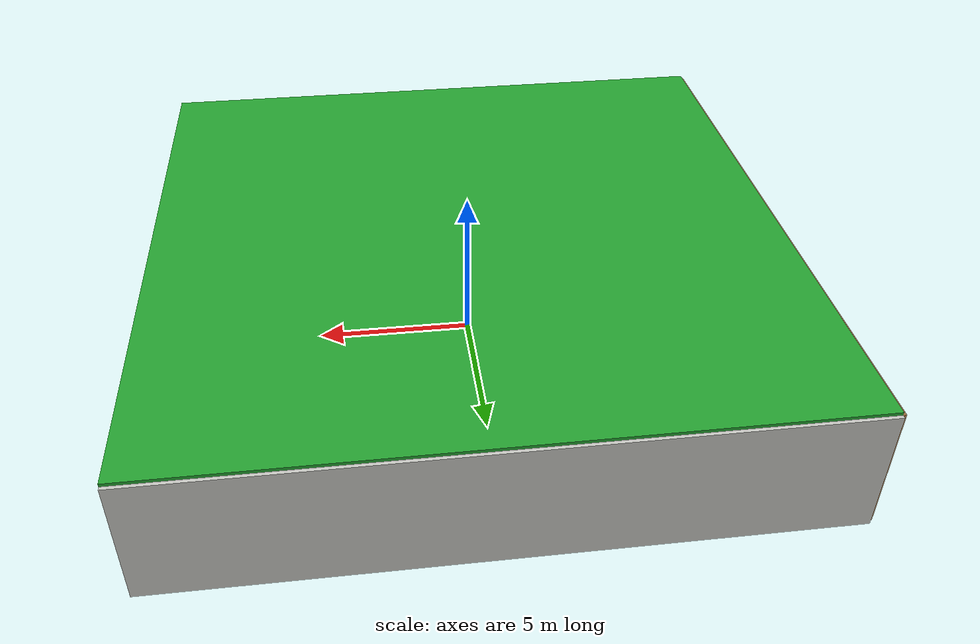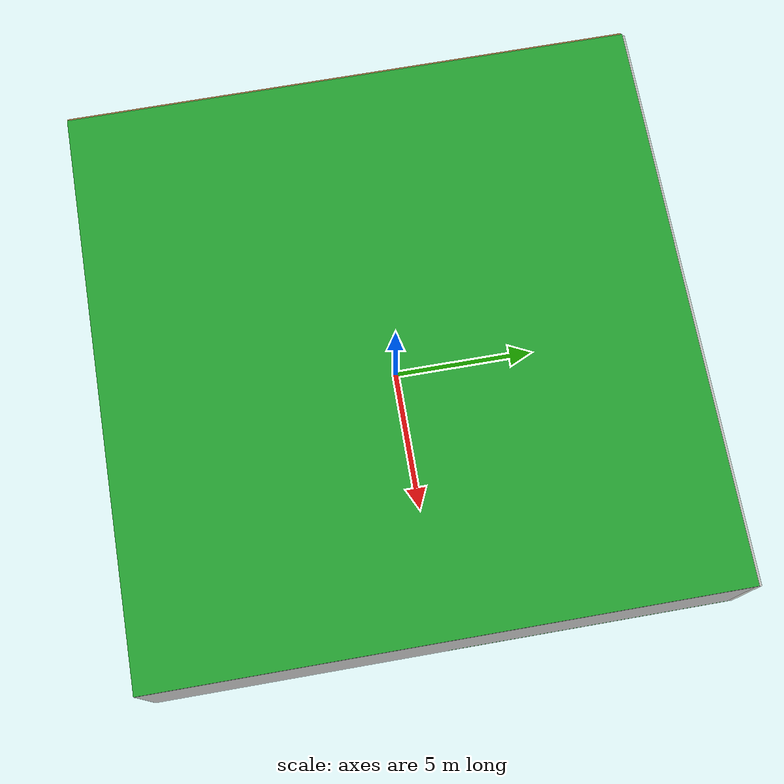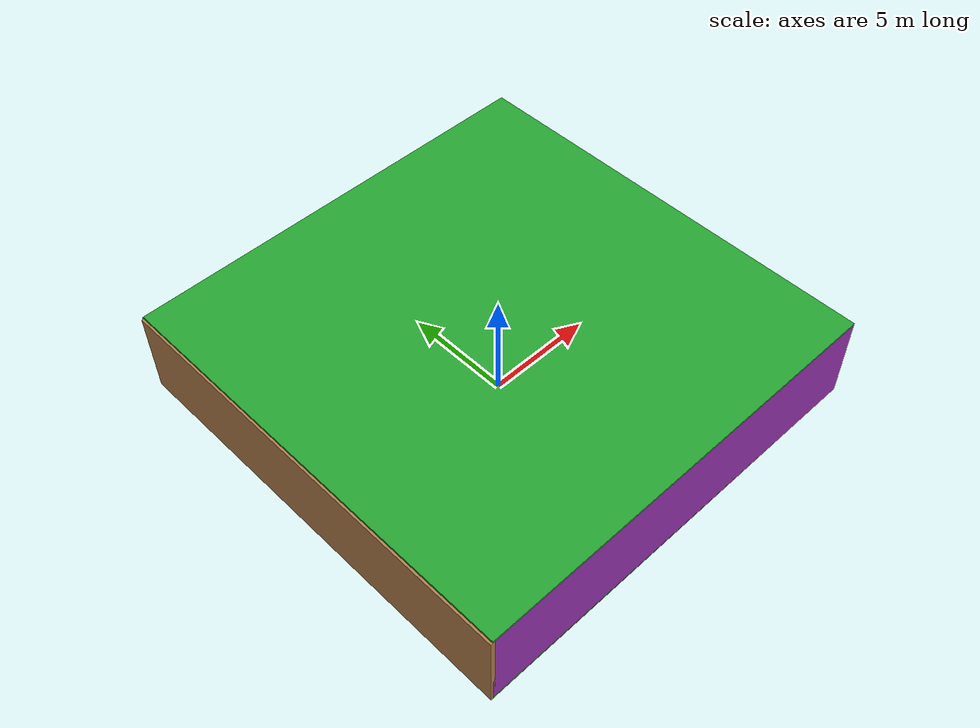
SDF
<sdf version="1.4">
 <world name="default">
  <physics type="ode">
   <max_step_size>0.001</max_step_size>
   <real_time_factor>1</real_time_factor>
   <real_time_update_rate>1000</real_time_update_rate>
   <gravity>0 0 -9.8</gravity>
  </physics>
  <scene><ambient>0.4 0.4 0.4 1</ambient><background>0.7 0.7 0.7 1</background><shadows>1</shadows></scene>
  <model name="Surrounding">
   <static>1</static>
   <link name="Ceiling">
    <collision name="Ceiling_Collision"><geometry><box><size>20 20 0.1</size></box></geometry></collision>
    <visual name="Ceiling_Visual">
     <geometry><box><size>20 20 0.1</size></box></geometry>
     <material>
      <script><uri>file://media/materials/scripts/gazebo.material</uri><name>Gazebo/Green</name></script>
     </material>
    </visual>
    <pose>0 0 4.05 0 0 0</pose>
   </link>
   <link name="Wall_South">
    <collision name="Wall_South_Collision">
     <geometry><box><size>20 0 4</size></box></geometry>
     <pose>0 0 2 0 -0 0</pose>
    </collision>
    <visual name="Wall_South_Visual">
     <pose>0 0 2 0 -0 0</pose>
     <geometry><box><size>20 0 4</size></box></geometry>
     <material>
      <script><uri>file://media/materials/scripts/gazebo.material</uri><name>Gazebo/PurpleGlow</name></script>
     </material>
    </visual>
    <velocity_decay><linear>0</linear><angular>0</angular></velocity_decay>
    <pose>0 -10 0 0 -0 0</pose>
   </link>
   <link name="Wall_East">
    <collision name="Wall_21_Collision">
     <geometry><box><size>20 0 4</size></box></geometry>
     <pose>0 0 2 0 -0 0</pose>
    </collision>
    <visual name="Wall_21_Visual">
     <pose>0 0 2 0 -0 0</pose>
     <geometry><box><size>20 0 4</size></box></geometry>
     <material>
      <script><uri>file://media/materials/scripts/gazebo.material</uri><name>Gazebo/CloudySky</name></script>
     </material>
    </visual>
    <velocity_decay><linear>0</linear><angular>0</angular></velocity_decay>
    <pose>10 0 0 0 -0 1.5708</pose>
   </link>
   <link name="Wall_North">
    <collision name="Wall_22_Collision">
     <geometry><box><size>20 0.2 4</size></box></geometry>
     <pose>0 0 2 0 -0 0</pose>
    </collision>
    <visual name="Wall_22_Visual">
     <pose>0 0 2 0 -0 0</pose>
     <geometry><box><size>20 0.2 4</size></box></geometry>
     <material>
      <script><uri>file://media/materials/scripts/gazebo.material</uri><name>Gazebo/CeilingTiled</name></script>
     </material>
    </visual>
    <velocity_decay><linear>0</linear><angular>0</angular></velocity_decay>
    <pose>0 10 0 0 -0 0</pose>
   </link>
   <link name="Wall_West">
    <collision name="Wall_23_Collision">
     <geometry><box><size>20 0.2 4</size></box></geometry>
     <pose>0 0 2 0 -0 0</pose>
    </collision>
    <visual name="Wall_23_Visual">
     <pose>0 0 2 0 -0 0</pose>
     <geometry><box><size>20 0.2 4</size></box></geometry>
     <material>
      <script><uri>file://media/materials/scripts/gazebo.material</uri><name>Gazebo/Wood</name></script>
     </material>
    </visual>
    <velocity_decay><linear>0</linear><angular>0</angular></velocity_decay>
    <pose>-10 0 0 0 0 -1.5708</pose>
   </link>
   <link name="Ground_link">
    <collision name="collision">
     <pose>0 0 .05 0 -0 0</pose>
     <geometry><box><size>20 20 0.1</size></box></geometry>
    </collision>
    <visual name="visual">
     <pose>0 0 .05 0 -0 0</pose>
     <geometry><box><size>20 20 0.1</size></box></geometry>
     <material>
      <script><uri>file://media/materials/scripts/gazebo.material</uri><name>Gazebo/GreenGlow</name></script>
     </material>
    </visual>
   </link>
   <static>1</static>
  </model>
  <spherical_coordinates>
   <surface_model>EARTH_WGS84</surface_model>
   <latitude_deg>0</latitude_deg>
   <longitude_deg>0</longitude_deg>
   <elevation>0</elevation>
   <heading_deg>0</heading_deg>
  </spherical_coordinates>
  <light name="lightball_0" type="diffuse">
   <diffuse>0.8 0.8 0.8 1</diffuse>
   <specular>0.2 0.2 0.2 1</specular>
   <attenuation>
    <range>100</range>
    <constant>0.7</constant>
    <linear>0.01</linear>
    <quadratic>0.001</quadratic>
   </attenuation>
   <direction>-0.5 0.1 -0.9</direction>
   <pose>5.48514769792 3.42408884946 1.66900466204 0 0 0</pose>
  </light>
  <light name="lightball_1" type="diffuse">
   <diffuse>0.8 0.8 0.8 1</diffuse>
   <specular>0.2 0.2 0.2 1</specular>
   <attenuation>
    <range>100</range>
    <constant>0.7</constant>
    <linear>0.01</linear>
    <quadratic>0.001</quadratic>
   </attenuation>
   <direction>-0.5 0.1 -0.9</direction>
   <pose>-7.54081524665 -8.22927386309 3.61451808059 0 0 0</pose>
  </light>
  <light name="lightball_2" type="diffuse">
   <diffuse>0.8 0.8 0.8 1</diffuse>
   <specular>0.2 0.2 0.2 1</specular>
   <attenuation>
    <range>100</range>
    <constant>0.7</constant>
    <linear>0.01</linear>
    <quadratic>0.001</quadratic>
   </attenuation>
   <direction>-0.5 0.1 -0.9</direction>
   <pose>6.55047089835 6.8433411391 1.54917787691 0 0 0</pose>
  </light>
  <light name="lightball_3" type="diffuse">
   <diffuse>0.8 0.8 0.8 1</diffuse>
   <specular>0.2 0.2 0.2 1</specular>
   <attenuation>
    <range>100</range>
    <constant>0.7</constant>
    <linear>0.01</linear>
    <quadratic>0.001</quadratic>
   </attenuation>
   <direction>-0.5 0.1 -0.9</direction>
   <pose>3.97807478858 4.39030569772 1.67766657124 0 0 0</pose>
  </light>
  <include>
   <uri>model://textured_shapes</uri>
   <pose>-4.81652285701 2.27015012834 0 0 0 2.37376727656</pose>
  </include>
  <include><uri>model://cabinet</uri><pose>-3.80329129557 7.92857951158 0 0 0 1.97293382284</pose></include>
  <include><uri>model://cabinet</uri><pose>-1.46251705521 1.3768034845 0 0 0 1.62635910855</pose></include>
  <include>
   <uri>model://robocup_3Dsim_goal</uri>
   <pose>-1.29325507105 8.10235134897 0 0 0 1.15053506153</pose>
  </include>
  <include><uri>model://table</uri><pose>1.27959249279 4.65896044487 0 0 0 1.45889981744</pose></include>
  <include>
   <uri>model://robocup_3Dsim_goal</uri>
   <pose>4.61891256562 -7.92823952292 0 0 0 1.91967226844</pose>
  </include>
  <include><uri>model://cabinet</uri><pose>4.84221954177 -4.44369196212 0 0 0 2.41936161741</pose></include>
  <include>
   <uri>model://robocup_3Dsim_goal</uri>
   <pose>4.66667066197 -2.14330199793 0 0 0 1.01295531042</pose>
  </include>
  <include>
   <uri>model://textured_shapes</uri>
   <pose>4.0410996346 1.95204554471 0 0 0 0.204568093812</pose>
  </include>
  <include><uri>model://cabinet</uri><pose>4.33636198398 6.9904616054 0 0 0 2.17555821557</pose></include>
  <include><uri>model://table</uri><pose>7.2363512804 -6.83627491038 0 0 0 1.27750532597</pose></include>
 </world>
</sdf>

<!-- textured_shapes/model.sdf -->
<sdf version="1.6">
  <model name="textured_shapes">
    <pose>0 0 0.5 0 0 0</pose>
    <link name="box">
      <pose>0 -1.5 0 0 0 0</pose>
      <collision name="collision">
        <geometry>
          <box>
            <size>1 1 1</size>
          </box>
        </geometry>
      </collision>
      <visual name="visual">
        <geometry>
          <box>
            <size>1 1 1</size>
          </box>
        </geometry>
        <material>
          <script>
            <uri>model://../model_source/models/textured_shapes/materials/scripts</uri>
            <uri>model://../model_source/models/textured_shapes/materials/textures</uri>
            <name>TexturedShape/Squares</name>
          </script>
        </material>
      </visual>
    </link>
    <link name="sphere">
      <collision name="collision">
        <geometry>
          <sphere>
            <radius>0.5</radius>
          </sphere>
        </geometry>
      </collision>
      <visual name="visual">
        <geometry>
          <sphere>
            <radius>0.5</radius>
          </sphere>
        </geometry>
        <material>
          <script>
            <uri>model://../model_source/models/textured_shapes/materials/scripts</uri>
            <uri>model://../model_source/models/textured_shapes/materials/textures</uri>
            <name>TexturedShape/Squares</name>
          </script>
        </material>
      </visual>
    </link>
    <link name="cylinder">
      <pose>0 1.5 0 0 0 0</pose>
      <collision name="collision">
        <geometry>
          <cylinder>
            <radius>0.5</radius>
            <length>1</length>
          </cylinder>
        </geometry>
      </collision>
      <visual name="visual">
        <geometry>
          <cylinder>
            <radius>0.5</radius>
            <length>1</length>
          </cylinder>
        </geometry>
        <material>
          <script>
            <uri>model://../model_source/models/textured_shapes/materials/scripts</uri>
            <uri>model://../model_source/models/textured_shapes/materials/textures</uri>
            <name>TexturedShape/Squares</name>
          </script>
        </material>
      </visual>
    </link>
  </model>
</sdf>

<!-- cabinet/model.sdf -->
<sdf version="1.5">
  <model name="cabinet">
    <static>true</static>
    <link name="cabinet_bottom_plate">
      <inertial>
        <pose>0 0 -1 0 0 0</pose>
        <inertia>
          <ixx>2.050000</ixx>
          <ixy>0</ixy>
          <ixz>0</ixz>
          <iyy>2.050000</iyy>
          <iyz>0</iyz>
          <izz>2.050000</izz>
        </inertia>
        <mass>25.000000</mass>
      </inertial>
      <collision name="cabinet_bottom_plate_geom">
        <pose>0 0 0.010000 0 0 0</pose>
        <geometry>
          <box>
            <size>0.450000 0.450000 0.020000</size>
          </box>
        </geometry>
      </collision>
      <visual name="cabinet_bottom_plate_geom_visual">
        <pose>0 0 0.010000 0 0 0</pose>
        <geometry>
          <box>
            <size>0.450000 0.450000 0.020000</size>
          </box>
        </geometry>
        <material>
          <script>
            <uri>model://media/materials/scripts/gazebo.material</uri>
            <name>Gazebo/Wood</name>
          </script>
        </material>
      </visual>
      <collision name="cabinet_bottom_plate_geom_cabinet_back_plate">
        <pose>0.235000 0 0.510000 0 0 0</pose>
        <geometry>
          <box>
            <size>0.020000 0.450000 1.020000</size>
          </box>
        </geometry>
      </collision>
      <visual name="cabinet_bottom_plate_geom_cabinet_back_plate_visual">
        <pose>0.235000 0 0.510000 0 0 0</pose>
        <geometry>
          <box>
            <size>0.020000 0.450000 1.020000</size>
          </box>
        </geometry>
        <material>
          <script>
            <uri>model://media/materials/scripts/gazebo.material</uri>
            <name>Gazebo/Wood</name>
          </script>
        </material>
      </visual>
      <collision name="cabinet_bottom_plate_geom_cabinet_left_plate">
        <pose>0 0.235000 0.510000 0 0 0</pose>
        <geometry>
          <box>
            <size>0.450000 0.020000 1.020000</size>
          </box>
        </geometry>
      </collision>
      <visual name="cabinet_bottom_plate_geom_cabinet_left_plate_visual">
        <pose>0 0.235000 0.510000 0 0 0</pose>
        <geometry>
          <box>
            <size>0.450000 0.020000 1.020000</size>
          </box>
        </geometry>
        <material>
          <script>
            <uri>model://media/materials/scripts/gazebo.material</uri>
            <name>Gazebo/Wood</name>
          </script>
        </material>
      </visual>
      <collision name="cabinet_bottom_plate_geom_cabinet_middle_plate">
        <pose>0 0 0.510000 0 0 0</pose>
        <geometry>
          <box>
            <size>0.450000 0.450000 0.020000</size>
          </box>
        </geometry>
      </collision>
      <visual name="cabinet_bottom_plate_geom_cabinet_middle_plate_visual">
        <pose>0 0 0.510000 0 0 0</pose>
        <geometry>
          <box>
            <size>0.450000 0.450000 0.020000</size>
          </box>
        </geometry>
        <material>
          <script>
            <uri>model://media/materials/scripts/gazebo.material</uri>
            <name>Gazebo/Wood</name>
          </script>
        </material>
      </visual>
      <collision name="cabinet_bottom_plate_geom_cabinet_right_plate">
        <pose>0 -0.235000 0.510000 0 0 0</pose>
        <geometry>
          <box>
            <size>0.450000 0.020000 1.020000</size>
          </box>
        </geometry>
      </collision>
      <visual name="cabinet_bottom_plate_geom_cabinet_right_plate_visual">
        <pose>0 -0.235000 0.510000 0 0 0</pose>
        <geometry>
          <box>
            <size>0.450000 0.020000 1.020000</size>
          </box>
        </geometry>
        <material>
          <script>
            <uri>model://media/materials/scripts/gazebo.material</uri>
            <name>Gazebo/Wood</name>
          </script>
        </material>
      </visual>
      <collision name="cabinet_bottom_plate_geom_cabinet_top_plate">
        <pose>0 0 1.010000 0 0 0</pose>
        <geometry>
          <box>
            <size>0.450000 0.450000 0.020000</size>
          </box>
        </geometry>
      </collision>
      <visual name="cabinet_bottom_plate_geom_cabinet_top_plate_visual">
        <pose>0 0 1.010000 0 0 0</pose>
        <geometry>
          <box>
            <size>0.450000 0.450000 0.020000</size>
          </box>
        </geometry>
        <material>
          <script>
            <uri>model://media/materials/scripts/gazebo.material</uri>
            <name>Gazebo/Wood</name>
          </script>
        </material>
      </visual>
    </link>
  </model>
</sdf>

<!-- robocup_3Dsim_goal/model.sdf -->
<sdf version="1.5">
  <model name="robocup_3d_goal">
    <static>true</static>
    <link name="left_post">
      <pose>0 1.05 0.45 0 0 0</pose>
      <collision name="collision">
        <geometry>
          <cylinder>
            <radius>0.05</radius>
            <length>0.9</length>
          </cylinder>
        </geometry>
      </collision>
      <visual name="visual">
        <geometry>
          <cylinder>
            <radius>0.05</radius>
            <length>0.9</length>
          </cylinder>
        </geometry>
        <material>
          <script>
            <uri>file://media/materials/scripts/gazebo.material</uri>
            <name>Gazebo/ZincYellow</name>
          </script>
        </material>
      </visual>
    </link>
    <link name="left_support_horiz_lower">
      <pose>0.30 1.05 0.01 0 0 0</pose>
      <collision name="collision">
        <geometry>
          <box>
            <size>0.50 0.02 0.02</size>
          </box>
        </geometry>
      </collision>
      <visual name="visual">
        <geometry>
          <box>
            <size>0.50 0.02 0.02</size>
          </box>
        </geometry>
        <material>
          <script>
            <uri>file://media/materials/scripts/gazebo.material</uri>
            <name>Gazebo/White</name>
          </script>
        </material>
      </visual>
    </link>
    <link name="left_support_horiz_upper">
      <pose>0.30 1.05 0.79 0 0 0</pose>
      <collision name="collision">
        <geometry>
          <box>
            <size>0.50 0.02 0.02</size>
          </box>
        </geometry>
      </collision>
      <visual name="visual">
        <geometry>
          <box>
            <size>0.50 0.02 0.02</size>
          </box>
        </geometry>
        <material>
          <script>
            <uri>file://media/materials/scripts/gazebo.material</uri>
            <name>Gazebo/White</name>
          </script>
        </material>
      </visual>
    </link>
    <link name="left_support_vertical">
      <pose>0.56 1.05 0.4 0 1.5708 0</pose>
      <collision name="collision">
        <geometry>
          <box>
            <size>0.80 0.02 0.02</size>
          </box>
        </geometry>
      </collision>
      <visual name="visual">
        <geometry>
          <box>
            <size>0.80 0.02 0.02</size>
          </box>
        </geometry>
        <material>
          <script>
            <uri>file://media/materials/scripts/gazebo.material</uri>
            <name>Gazebo/White</name>
          </script>
        </material>
      </visual>
    </link>
    <link name="right_support_horiz_lower">
      <pose>0.30 -1.05 0.01 0 0 0</pose>
      <collision name="collision">
        <geometry>
          <box>
            <size>0.50 0.02 0.02</size>
          </box>
        </geometry>
      </collision>
      <visual name="visual">
        <geometry>
          <box>
            <size>0.50 0.02 0.02</size>
          </box>
        </geometry>
        <material>
          <script>
            <uri>file://media/materials/scripts/gazebo.material</uri>
            <name>Gazebo/White</name>
          </script>
        </material>
      </visual>
    </link>
    <link name="right_support_horiz_upper">
      <pose>0.30 -1.05 0.79 0 0 0</pose>
      <collision name="collision">
        <geometry>
          <box>
            <size>0.50 0.02 0.02</size>
          </box>
        </geometry>
      </collision>
      <visual name="visual">
        <geometry>
          <box>
            <size>0.50 0.02 0.02</size>
          </box>
        </geometry>
        <material>
          <script>
            <uri>file://media/materials/scripts/gazebo.material</uri>
            <name>Gazebo/White</name>
          </script>
        </material>
      </visual>
    </link>
    <link name="right_support_vertical">
      <pose>0.56 -1.05 0.4 0 1.5708 0</pose>
      <collision name="collision">
        <geometry>
          <box>
            <size>0.80 0.02 0.02</size>
          </box>
        </geometry>
      </collision>
      <visual name="visual">
        <geometry>
          <box>
            <size>0.80 0.02 0.02</size>
          </box>
        </geometry>
        <material>
          <script>
            <uri>file://media/materials/scripts/gazebo.material</uri>
            <name>Gazebo/White</name>
          </script>
        </material>
      </visual>
    </link>
    <link name="center_support_horiz_lower">
      <pose>0.56 0 0.01 0 1.5708 0</pose>
      <collision name="collision">
        <geometry>
          <box>
            <size>0.02 2.08 0.02</size>
          </box>
        </geometry>
      </collision>
      <visual name="visual">
        <geometry>
          <box>
            <size>0.02 2.08 0.02</size>
          </box>
        </geometry>
        <material>
          <script>
            <uri>file://media/materials/scripts/gazebo.material</uri>
            <name>Gazebo/White</name>
          </script>
        </material>
      </visual>
    </link>
    <link name="center_support_horiz_upper">
      <pose>0.56 0 0.79 0 1.5708 0</pose>
      <collision name="collision">
        <geometry>
          <box>
            <size>0.02 2.08 0.02</size>
          </box>
        </geometry>
      </collision>
      <visual name="visual">
        <geometry>
          <box>
            <size>0.02 2.08 0.02</size>
          </box>
        </geometry>
        <material>
          <script>
            <uri>file://media/materials/scripts/gazebo.material</uri>
            <name>Gazebo/White</name>
          </script>
        </material>
      </visual>
    </link>
    <link name="right_post">
      <pose>0 -1.05 0.45 0 0 0</pose>
      <collision name="collision">
        <geometry>
          <cylinder>
            <radius>0.05</radius>
            <length>0.9</length>
          </cylinder>
        </geometry>
      </collision>
      <visual name="visual">
        <geometry>
          <cylinder>
            <radius>0.05</radius>
            <length>0.9</length>
          </cylinder>
        </geometry>
        <material>
          <script>
            <uri>file://media/materials/scripts/gazebo.material</uri>
            <name>Gazebo/ZincYellow</name>
          </script>
        </material>
      </visual>
    </link>
    <link name="crossbar">
      <pose>0 0 0.85 1.57 1.57 0</pose>
      <collision name="collision">
        <geometry>
          <cylinder>
            <radius>0.05</radius>
            <length>2.0</length>
          </cylinder>
        </geometry>
      </collision>
      <visual name="visual">
        <geometry>
          <cylinder>
            <radius>0.05</radius>
            <length>2.0</length>
          </cylinder>
        </geometry>
        <material>
          <script>
            <uri>file://media/materials/scripts/gazebo.material</uri>
            <name>Gazebo/ZincYellow</name>
          </script>
        </material>
      </visual>
    </link>
    <link name="center_net">
      <pose>0.56 0 0.40 0 0 0</pose>
      <collision name="collision">
        <geometry>
          <box>
            <size>0.01 2.1 0.80</size>
          </box>
        </geometry>
      </collision>
      <visual name="visual">
        <geometry>
          <box>
            <size>0.01 2.1 0.80</size>
          </box>
        </geometry>
        <material>
          <script>
            <uri>model://../model_source/models/robocup09_spl_field/materials/scripts/</uri>
            <uri>model://../model_source/models/robocup09_spl_field/materials/textures/</uri>
            <name>RoboCup/Net</name>
          </script>
        </material>
      </visual>
    </link>
    <link name="left_net">
      <pose>0.30 1.05 0.40 0 0 0</pose>
      <collision name="collision">
        <geometry>
          <box>
            <size>0.50 0.01 0.76</size>
          </box>
        </geometry>
      </collision>
      <visual name="visual">
        <geometry>
          <box>
            <size>0.50 0.01 0.76</size>
          </box>
        </geometry>
        <material>
          <script>
            <uri>model://../model_source/models/robocup09_spl_field/materials/scripts/</uri>
            <uri>model://../model_source/models/robocup09_spl_field/materials/textures/</uri>
            <name>RoboCup/Net</name>
          </script>
        </material>
      </visual>
    </link>
    <link name="right_net">
      <pose>0.30 -1.05 0.40 0 0 0</pose>
      <collision name="collision">
        <geometry>
          <box>
            <size>0.50 0.01 0.76</size>
          </box>
        </geometry>
      </collision>
      <visual name="visual">
        <geometry>
          <box>
            <size>0.50 0.01 0.76</size>
          </box>
        </geometry>
        <material>
          <script>
            <uri>model://../model_source/models/robocup09_spl_field/materials/scripts/</uri>
            <uri>model://../model_source/models/robocup09_spl_field/materials/textures/</uri>
            <name>RoboCup/Net</name>
          </script>
        </material>
      </visual>
    </link>
  </model>
</sdf>

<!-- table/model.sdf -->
<sdf version="1.5">
  <model name="table">
    <static>true</static>
    <link name="link">
      <collision name="surface">
        <pose>0 0 1.0 0 0 0</pose>
        <geometry>
          <box>
            <size>1.5 0.8 0.03</size>
          </box>
        </geometry>
        <surface>
          <friction>
            <ode>
              <mu>0.6</mu>
              <mu2>0.6</mu2>
            </ode>
          </friction>
        </surface>
      </collision>
      <visual name="visual1">
        <pose>0 0 1.0 0 0 0</pose>
        <geometry>
          <box>
            <size>1.5 0.8 0.03</size>
          </box>
        </geometry>
        <material>
          <script>
            <uri>model://media/materials/scripts/gazebo.material</uri>
            <name>Gazebo/Wood</name>
          </script>
        </material>
      </visual>
      <collision name="front_left_leg">
        <pose>0.68 0.38 0.5 0 0 0</pose>
        <geometry>
          <cylinder>
            <radius>0.02</radius>
            <length>1.0</length>
          </cylinder>
        </geometry>
      </collision>
      <visual name="front_left_leg">
        <pose>0.68 0.38 0.5 0 0 0</pose>
        <geometry>
          <cylinder>
            <radius>0.02</radius>
            <length>1.0</length>
          </cylinder>
        </geometry>
        <material>
          <script>
            <uri>model://media/materials/scripts/gazebo.material</uri>
            <name>Gazebo/Grey</name>
          </script>
        </material>
      </visual>
      <collision name="front_right_leg">
        <pose>0.68 -0.38 0.5 0 0 0</pose>
        <geometry>
          <cylinder>
            <radius>0.02</radius>
            <length>1.0</length>
          </cylinder>
        </geometry>
      </collision>
      <visual name="front_right_leg">
        <pose>0.68 -0.38 0.5 0 0 0</pose>
        <geometry>
          <cylinder>
            <radius>0.02</radius>
            <length>1.0</length>
          </cylinder>
        </geometry>
        <material>
          <script>
            <uri>model://media/materials/scripts/gazebo.material</uri>
            <name>Gazebo/Grey</name>
          </script>
        </material>
      </visual>
      <collision name="back_right_leg">
        <pose>-0.68 -0.38 0.5 0 0 0</pose>
        <geometry>
          <cylinder>
            <radius>0.02</radius>
            <length>1.0</length>
          </cylinder>
        </geometry>
      </collision>
      <visual name="back_right_leg">
        <pose>-0.68 -0.38 0.5 0 0 0</pose>
        <geometry>
          <cylinder>
            <radius>0.02</radius>
            <length>1.0</length>
          </cylinder>
        </geometry>
        <material>
          <script>
            <uri>model://media/materials/scripts/gazebo.material</uri>
            <name>Gazebo/Grey</name>
          </script>
        </material>
      </visual>
      <collision name="back_left_leg">
        <pose>-0.68 0.38 0.5 0 0 0</pose>
        <geometry>
          <cylinder>
            <radius>0.02</radius>
            <length>1.0</length>
          </cylinder>
        </geometry>
      </collision>
      <visual name="back_left_leg">
        <pose>-0.68 0.38 0.5 0 0 0</pose>
        <geometry>
          <cylinder>
            <radius>0.02</radius>
            <length>1.0</length>
          </cylinder>
        </geometry>
        <material>
          <script>
            <uri>model://media/materials/scripts/gazebo.material</uri>
            <name>Gazebo/Grey</name>
          </script>
        </material>
      </visual>
    </link>
  </model>
</sdf>
